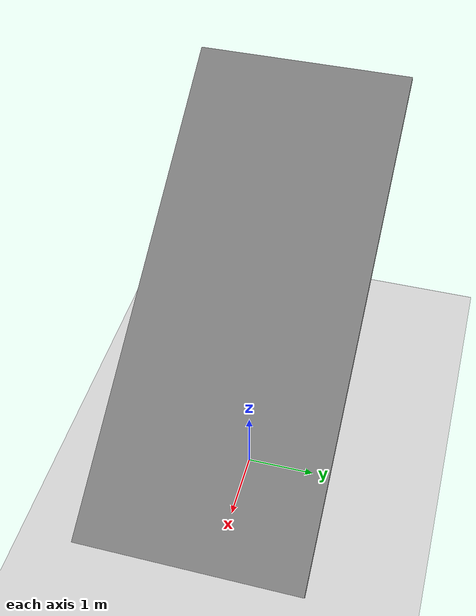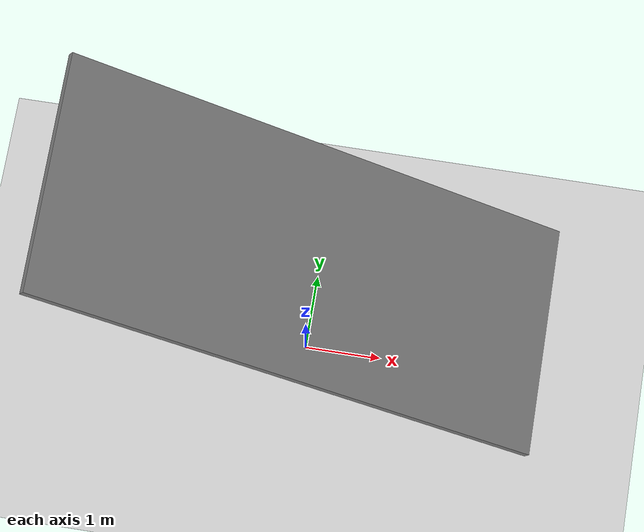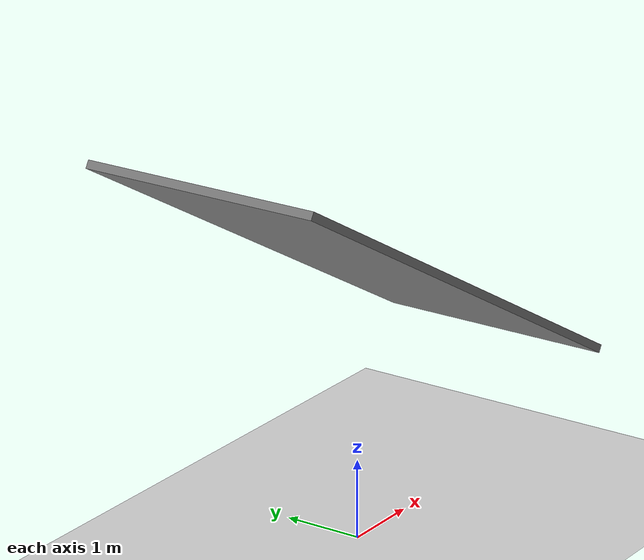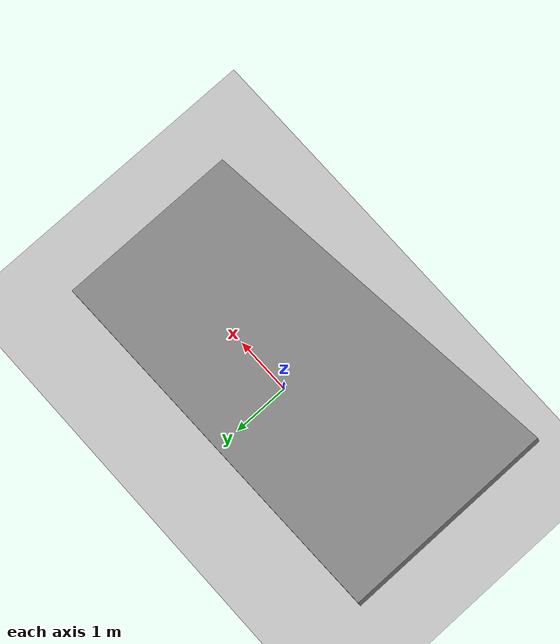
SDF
<?xml version="1.0" ?>
<sdf version="1.6">
  <world name="base_world">
    <!-- Sol -->
    <light type="directional" name="sun">
      <cast_shadows>true</cast_shadows>
      <direction>-0.5 -0.5 -1</direction>
      <diffuse>1 1 1 1</diffuse>
      <specular>1 1 1 1</specular>
    </light>

     <!-- Suelo manual -->
    <model name="ground_plane">
      <static>true</static>
      <link name="link">
        <collision name="collision">
          <geometry>
            <plane>
              <normal>0 0 1</normal>
              <size>100 100</size>
            </plane>
          </geometry>
        </collision>
        <visual name="visual">
          <geometry>
            <plane>
              <normal>0 0 1</normal>
              <size>100 100</size>
            </plane>
          </geometry>
          <material>
            <ambient>0.8 0.8 0.8 1</ambient>
            <diffuse>0.8 0.8 0.8 1</diffuse>
            <specular>0.8 0.8 0.8 1</specular>
          </material>
        </visual>
      </link>
    </model>

     <!-- Plano inclinado -->
    <model name="inclined_plane">
      <static>true</static>
      <pose>0 0 3.5 0 0.523599 0</pose> <!-- Rotación de 45 grados alrededor de Y -->
      <link name="link">
        <collision name="collision">
          <geometry>
            <box>
              <size>7 3 0.1</size>
            </box>
          </geometry>
          <surface>
            <friction>
              <ode>
                <mu>0.0</mu>
                <mu2>0.0</mu2>
              </ode>
            </friction>
          </surface>
        </collision>
        <visual name="visual">
          <geometry>
            <box>
              <size>7 3 0.1</size>
            </box>
          </geometry>
          <material>
            <ambient>0.5 0.5 0.5 1</ambient>
            <diffuse>0.5 0.5 0.5 1</diffuse>
          </material>
        </visual>
      </link>
    </model>

  </world>
</sdf>
